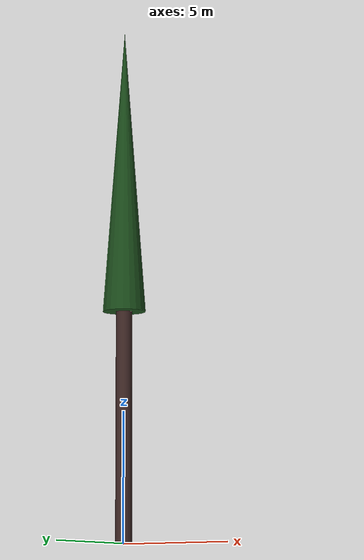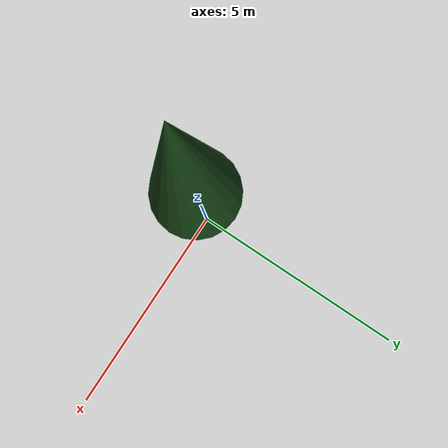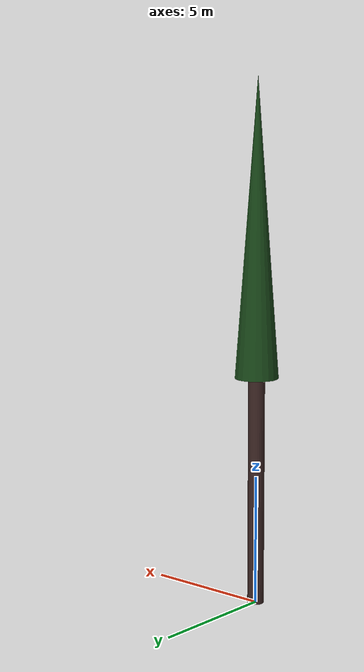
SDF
<?xml version="1.0" ?>
<sdf version="1.10">
  <model name="cypres_provence_08">
    <static>true</static>

    <!-- Tronc -->
    <link name="trunk">
      <pose>0 0 4.428265094616366 0 0 0</pose>
      <visual name="trunk_visual">
        <geometry>
          <cylinder>
            <radius>0.31688065527813813</radius>
            <length>8.856530189232732</length>
          </cylinder>
        </geometry>
        <material>
          <ambient>0.24 0.15 0.14 1</ambient>
          <diffuse>0.24 0.15 0.14 1</diffuse>
          <specular>0.1 0.1 0.1 1</specular>
        </material>
      </visual>
      <collision name="trunk_collision">
        <geometry>
          <cylinder>
            <radius>0.31688065527813813</radius>
            <length>8.856530189232732</length>
          </cylinder>
        </geometry>
      </collision>
    </link>

    <!-- Feuillage -->
    <link name="crown">
      <pose>0 0 14.493208124418965 0 0 0</pose>
      <visual name="crown_visual">
        <geometry>
          <cone>
              <radius>0.831784921920954</radius>
              <length>11.273355870372466</length>
            </cone>
        </geometry>
        <material>
          <ambient>0.10 0.29 0.10 1</ambient>
          <diffuse>0.10 0.29 0.10 1</diffuse>
          <specular>0.1 0.1 0.1 1</specular>
        </material>
      </visual>
      <collision name="crown_collision">
        <geometry>
          <sphere>
            <radius>0.6654279375367632</radius>
          </sphere>
        </geometry>
      </collision>
    </link>

    <!-- Joint tronc-feuillage -->
    <joint name="trunk_crown_joint" type="fixed">
      <parent>trunk</parent>
      <child>crown</child>
    </joint>

  </model>
</sdf>
